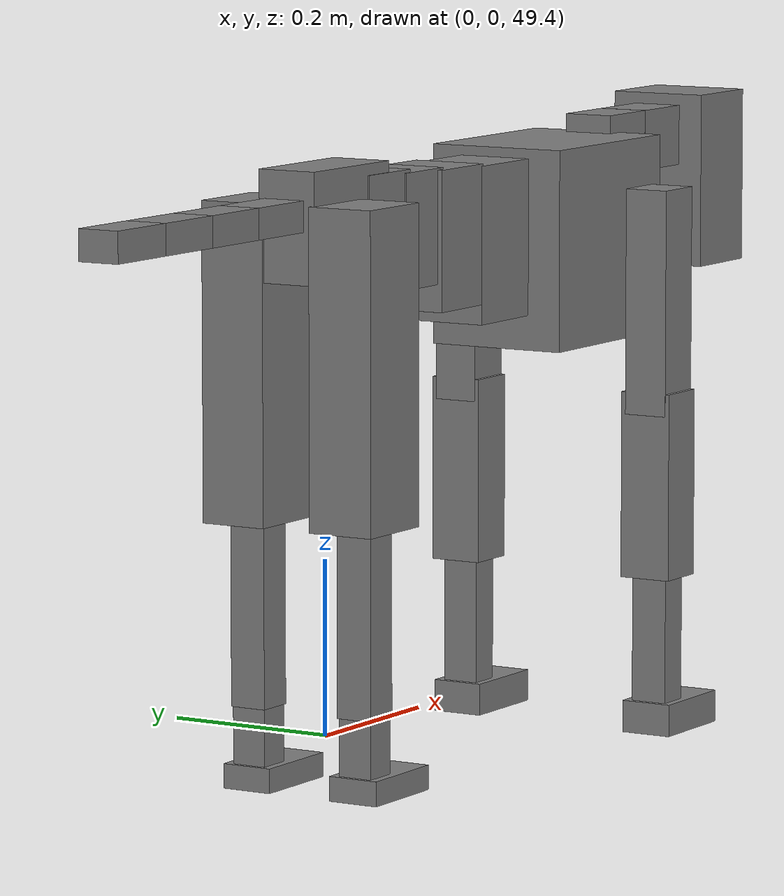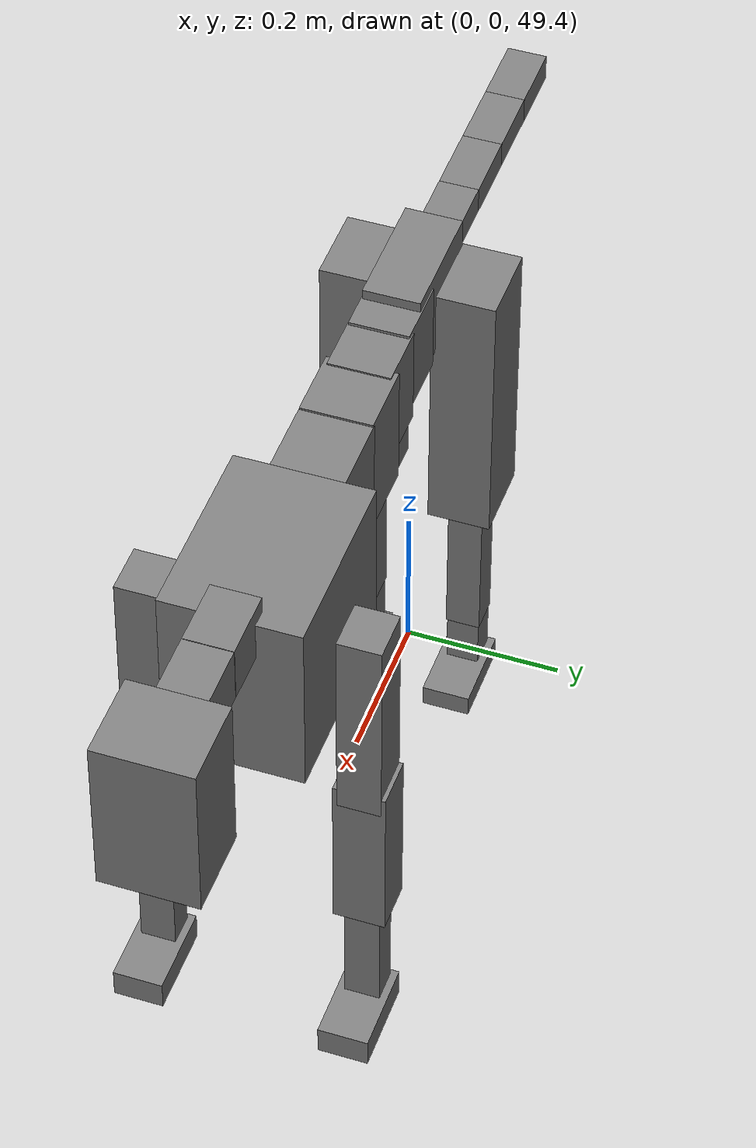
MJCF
<mujoco model="dog">

    <default>
        <joint armature="0.02" stiffness="1" damping="0.2" limited="true"/>
        <geom condim="3" friction="1 0.05 0.05" margin="0.01"/>
        <motor ctrllimited="true" ctrlrange="-1.0 1.0" forcelimited="true" gear="50"/>
    </default>

    <compiler inertiafromgeom="true" angle="radian"/>

    <option timestep="0.016" iterations="50" tolerance="1e-10" solver="Newton" jacobian="dense" cone="pyramidal"/>

    <size nconmax="20000" njmax="60000" nstack="5000000"/>
    <visual>
        <map force="0.1" zfar="30"/>
        <rgba haze="0.15 0.25 0.35 1"/>
        <quality shadowsize="2048"/>
        <global offwidth="800" offheight="800"/>
    </visual>

    <asset>
        <texture type="skybox" builtin="gradient" rgb1="0.3 0.5 0.7" rgb2="0 0 0" width="512" height="512"/>
        <texture name="texplane" type="2d" builtin="checker" rgb1=".2 .3 .4" rgb2=".1 0.15 0.2" width="512" height="512"
                 mark="cross" markrgb=".8 .8 .8"/>
        <texture name="texgeom" type="cube" builtin="flat" mark="cross" width="127" height="1278" rgb1="0.8 0.6 0.4"
                 rgb2="0.8 0.6 0.4" markrgb="1 1 1" random="0.01"/>

        <material name="matplane" reflectance="0.3" texture="texplane" texrepeat="1 1" texuniform="true"/>
        <material name="matgeom" texture="texgeom" texuniform="true" rgba="0.8 0.6 .4 1"/>
    </asset>

    <worldbody>
        <geom name="floor" pos="0 0 0" size="0 0 .25" type="plane" material="matplane" condim="3"/>

        <light directional="false" diffuse=".2 .2 .2" specular="0 0 0" pos="0 0 5" dir="0 0 -1" castshadow="false"/>
        <light mode="targetbodycom" target="torso" directional="false" diffuse=".8 .8 .8" specular="0.3 0.3 0.3"
               pos="0 0 4.0" dir="0 0 -1"/>

        <body name="root" pos="0 0 50">
            <freejoint name="root_1"/>
            <geom type="box" pos="0 0 -0.02" size="0.0774  0.0358  0.063" density="2030"/>

            <body name="spine1" pos="0.054 0 0">
                <joint name="spine1_y" axis="0 1 0" range="0 0.7" limited="true"/>
                <geom type="box" pos="0.02375 0 -0.03" size="0.04375  0.0375  0.05985" density="2030"/>

                <body name="spine2" pos="0.0612 0 0">
                    <joint name="spine2_y" axis="0 1 0" range="-0.15 0.15" limited="true"/>
                    <geom type="box" pos="0.03555  0  -0.04" size="0.04055  0.039  0.06615" density="2030"/>

                    <body name="spine3" pos="0.0730 0 0">
                        <joint name="spine3_y" axis="0 1 0" range="-0.15 0.15" limited="true"/>
                        <geom type="box" pos="0.03555  0  -0.057" size="0.04555  0.0445  0.081" density="2030"/>

                        <body name="spine4" pos="0.0780 0 0">
                            <joint name="spine4_y" axis="0 1 0" range="-0.15 0.15" limited="true"/>
                            <geom type="box" pos="0.05265  0  -0.07" size="0.05265  0.045  0.09135" density="2030"/>

                            <body name="torso" pos="0.1082 0 0">
                                <joint name="torso_y" axis="0 1 0" range="-0.15 0.15" limited="true"/>
                                <geom type="box" pos="0.11925  0  -0.085" size="0.11925  0.085  0.11745"
                                      density="2030"/>

                                <body name="neck1" pos="0.2160  0   0.0180">
                                    <joint name="neck1_y" axis="0 1 0" range="-1.2  -1" limited="true"/>
                                    <geom type="box" pos="0.0423  0  0" size="0.0423  0.03  0.036" density="2325"/>

                                    <body name="neck2" pos="0.0853  0  0">
                                        <joint name="neck2_y" axis="0 1 0" range="0.1  0" limited="true"/>
                                        <geom type="box" pos="0.0423  0  0" size="0.0423  0.03  0.036" density="2325"/>

                                        <body name="head" pos="0.0853  0  0">
                                            <joint name="head_y" axis="0 1 0" range="-0.3  -0.2" limited="true"/>
                                            <geom type="box" pos="0.0531  0  -0.055" size="0.0531  0.06  0.1044"
                                                  density="4030"/>

                                        </body>
                                    </body>
                                </body>

                                <body name="front_shoulder" pos="0.156  0   -0.0480">
                                    <joint name="front_shoulder_y" axis="0 1 0" range="-1 1.5" limited="true"/>
                                    <geom type="box" pos="0 0.13 -0.1066" size="0.0312  0.0267  0.1332" density="1158"/>
                                    <geom type="box" pos="0 -0.13 -0.1066" size="0.0312  0.0267  0.1332"
                                          density="1158"/>

                                    <body name="front_elbow" pos="0  0  -0.2132">
                                        <joint name="front_elbow_y" axis="0 1 0" range="-2 0" limited="true"/>
                                        <geom type="box" pos="0 0.13 -0.1106" size="0.0311  0.0318  0.1106"
                                              density="1081"/>
                                        <geom type="box" pos="0 -0.13 -0.1106" size="0.0311  0.0318  0.1106"
                                              density="1081"/>

                                        <body name="front_wrist" pos="0  0  -0.2213">
                                            <joint name="front_wrist_y" axis="0 1 0" range="-0.2 0" limited="true"/>
                                            <geom type="box" pos="0 0.13 -0.0820" size="0.0198  0.0221  0.0952"
                                                  density="1664"/>
                                            <geom type="box" pos="0 -0.13 -0.0820" size="0.0198  0.0221  0.0952"
                                                  density="1664"/>

                                            <body name="front_finger_end" pos="0  0  -0.1640">
                                                <joint name="front_finger_y" axis="0 1 0" range="-0.4 1"
                                                       limited="true"/>
                                                <geom type="box" pos="0.0313  0.13  -0.0040"
                                                      size="0.0574  0.0313  0.0190" density="1515"/>
                                                <geom type="box" pos="0.0313  -0.13  -0.0040"
                                                      size="0.0574  0.0313  0.0190" density="1515"/>

                                            </body>

                                        </body>
                                    </body>
                                </body>

                            </body>
                        </body>
                    </body>
                </body>
            </body>

            <body name="back_hip" pos="-0.03 0 -0.018">
                <joint name="back_hip_y" axis="0 1 0" range="-1.5 0.3" limited="true"/>
                <geom type="box" pos="0 0.07 -0.1578" size="0.0506  0.0397  0.1806" density="1154"/>
                <geom type="box" pos="0 -0.07 -0.1578" size="0.0506  0.0397  0.1806" density="1154"/>

                <body name="back_knee" pos="0  0  -0.3156">
                    <joint name="back_knee_y" axis="0 1 0" range="0 2.8" limited="true"/>
                    <geom type="box" pos="0 0.07 -0.1088" size="0.0223  0.0219  0.1243" density="1227"/>
                    <geom type="box" pos="0 -0.07 -0.1088" size="0.0223  0.0219  0.1243" density="1227"/>

                    <body name="back_ankle" pos="0  0  -0.2175">
                        <joint name="back_ankle_y" axis="0 1 0" range="-2.2 0" limited="true"/>
                        <geom type="box" pos="0 0.07 -0.0481" size="0.0206  0.0206  0.0594" density="1284"/>
                        <geom type="box" pos="0 -0.07 -0.0481" size="0.0206  0.0206  0.0594" density="1284"/>

                        <body name="back_toe_end" pos="0  0  -0.0962">
                            <joint name="back_toe_y" axis="0 1 0" range="-0.4 1" limited="true"/>
                            <geom type="box" pos="0.0305  0.07  0.0009" size="0.0559  0.0305  0.0141" density="1515"/>
                            <geom type="box" pos="0.0305  -0.07  0.0009" size="0.0559  0.0305  0.0141" density="1515"/>

                        </body>
                    </body>
                </body>
            </body>

            <body name="tail1" pos="-0.074 0 -0.006">
                <joint name="tail1_y" axis="0 1 0" range="-0.2 0.2" limited="true"/>
                <geom type="box" pos="-0.0536  0  0" size="0.045  0.025  0.0175" density="1587"/>

                <body name="tail2" pos="-0.09 0 0">
                    <joint name="tail2_y" axis="0 1 0" range="-0.2 0.2" limited="true"/>
                    <geom type="box" pos="-0.0536  0  0" size="0.045  0.025  0.0175" density="1587"/>

                    <body name="tail3" pos="-0.09 0 0">
                        <joint name="tail3_y" axis="0 1 0" range="-0.2 0.2" limited="true"/>
                        <geom type="box" pos="-0.0536  0  0" size="0.045  0.025  0.0175" density="1587"/>

                        <body name="tail4" pos="-0.09 0 0">
                            <joint name="tail4_y" axis="0 1 0" range="-0.2 0.2" limited="true"/>
                            <geom type="box" pos="-0.0536  0  0" size="0.045  0.025  0.0175" density="1587"/>

                        </body>
                    </body>
                </body>
            </body>
        </body>
    </worldbody>

    <actuator>
        <motor joint="spine1_y" forcerange="-150 150     "/>
        <motor joint="spine2_y" forcerange="-150 150     "/>
        <motor joint="spine3_y" forcerange="-150 150     "/>
        <motor joint="spine4_y" forcerange="-150 150     "/>
        <motor joint="torso_y" forcerange="-150 150     "/>
        <motor joint="neck1_y" forcerange="-100 100       "/>
        <motor joint="neck2_y" forcerange="-100 100       "/>
        <motor joint="head_y" forcerange="-150 150       "/>
        <motor joint="front_shoulder_y" forcerange="-164.96 112.93"/>
        <motor joint="front_elbow_y" forcerange="-170.08 161.49"/>
        <motor joint="front_wrist_y" forcerange="-69.16 107.27"/>
        <motor joint="front_finger_y" forcerange="-85.74 41.28"/>
        <motor joint="back_hip_y" forcerange="-394.72 334.82"/>
        <motor joint="back_knee_y" forcerange="-308.68 210.56"/>
        <motor joint="back_angle_y" forcerange="-56.60 172.78"/>
        <motor joint="back_toe_y" forcerange="-122.12 41.96"/>
        <motor joint="tail1_y" forcerange="-50 50     "/>
        <motor joint="tail2_y" forcerange="-50 50     "/>
        <motor joint="tail3_y" forcerange="-50 50     "/>
        <motor joint="tail4_y" forcerange="-50 50     "/>
    </actuator>
</mujoco>
